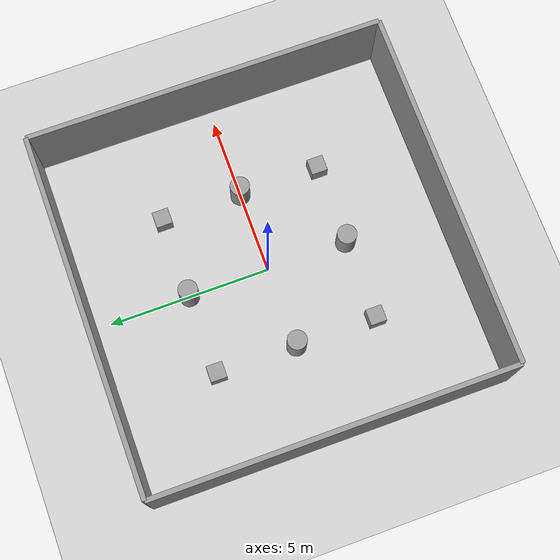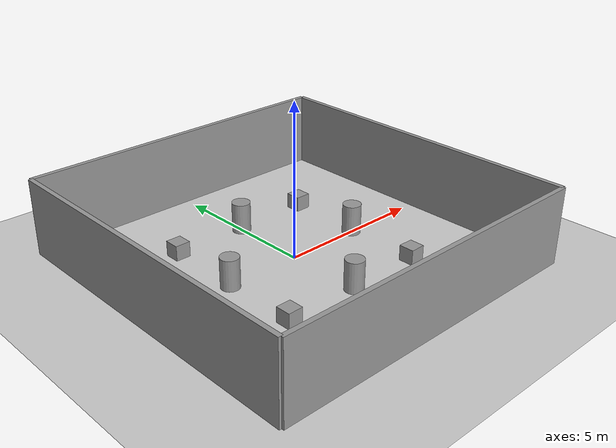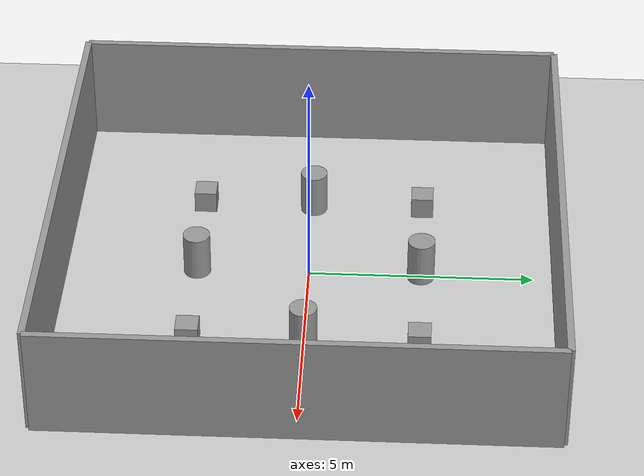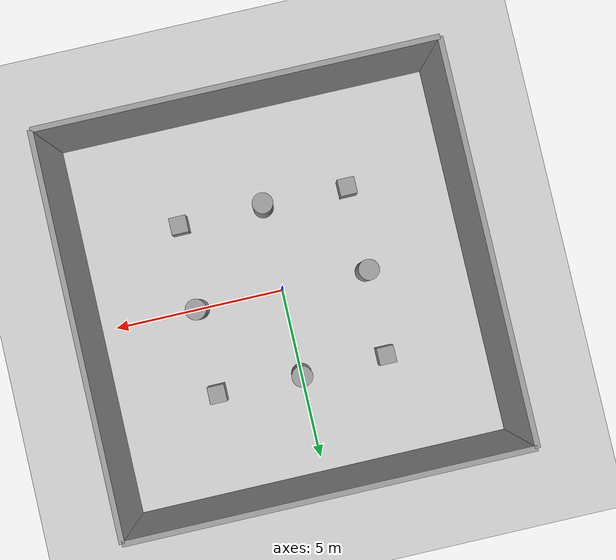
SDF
<sdf version="1.7">
 <world name="default">
  <light name="sun" type="directional">
   <pose>0 0 10 0 -0 0</pose>
   <diffuse>0.8 0.8 0.8 1</diffuse>
   <specular>0.2 0.2 0.2 1</specular>
   <attenuation>
    <range>1000</range>
    <constant>0.9</constant>
    <linear>0.01</linear>
    <quadratic>0.001</quadratic>
   </attenuation>
   <direction>-0.5 0.1 -0.9</direction>
   <spot><inner_angle>0</inner_angle><outer_angle>0</outer_angle><falloff>0</falloff></spot>
  </light>
  <model name="ground_plane">
   <static>1</static>
   <link name="link">
    <collision name="collision">
     <geometry><plane><normal>0 0 1</normal><size>100 100</size></plane></geometry>
     <surface>
      <contact><collide_bitmask>65535</collide_bitmask></contact>
      <friction><ode><mu>100</mu><mu2>50</mu2></ode></friction>
     </surface>
    </collision>
    <visual name="visual">
     <cast_shadows>0</cast_shadows>
     <geometry><plane><normal>0 0 1</normal><size>100 100</size></plane></geometry>
     <material>
      <script><uri>file://media/materials/scripts/gazebo.material</uri><name>Gazebo/Grey</name></script>
     </material>
    </visual>
   </link>
  </model>
  <gravity>0 0 -9.8</gravity>
  <magnetic_field>6e-06 2.3e-05 -4.2e-05</magnetic_field>
  <atmosphere type="adiabatic"/>
  <physics type="ode">
   <max_step_size>0.001</max_step_size>
   <real_time_factor>1</real_time_factor>
   <real_time_update_rate>1000</real_time_update_rate>
  </physics>
  <scene><ambient>0.4 0.4 0.4 1</ambient><background>0.7 0.7 0.7 1</background><shadows>1</shadows></scene>
  <audio><device>default</device></audio>
  <spherical_coordinates>
   <surface_model>EARTH_WGS84</surface_model>
   <latitude_deg>0</latitude_deg>
   <longitude_deg>0</longitude_deg>
   <elevation>0</elevation>
   <heading_deg>0</heading_deg>
  </spherical_coordinates>
  <model name="walls">
   <link name="Wall_10">
    <collision name="Wall_10_Collision">
     <geometry><box><size>11 0.15 2.5</size></box></geometry>
     <pose>0 0 1.25 0 -0 0</pose>
    </collision>
    <visual name="Wall_10_Visual">
     <pose>0 0 1.25 0 -0 0</pose>
     <geometry><box><size>11 0.15 2.5</size></box></geometry>
     <material>
      <script><uri>file://media/materials/scripts/gazebo.material</uri><name>Gazebo/Grey</name></script>
      <ambient>1 1 1 1</ambient>
     </material>
     <meta><layer>0</layer></meta>
    </visual>
    <pose>5.5 0 0 0 -0 1.5708</pose>
   </link>
   <link name="Wall_11">
    <collision name="Wall_11_Collision">
     <geometry><box><size>11 0.15 2.5</size></box></geometry>
     <pose>0 0 1.25 0 -0 0</pose>
    </collision>
    <visual name="Wall_11_Visual">
     <pose>0 0 1.25 0 -0 0</pose>
     <geometry><box><size>11 0.15 2.5</size></box></geometry>
     <material>
      <script><uri>file://media/materials/scripts/gazebo.material</uri><name>Gazebo/Grey</name></script>
      <ambient>1 1 1 1</ambient>
     </material>
     <meta><layer>0</layer></meta>
    </visual>
    <pose>0 5.5 0 0 -0 3.14159</pose>
   </link>
   <link name="Wall_7">
    <collision name="Wall_7_Collision">
     <geometry><box><size>11 0.15 2.5</size></box></geometry>
     <pose>0 0 1.25 0 -0 0</pose>
    </collision>
    <visual name="Wall_7_Visual">
     <pose>0 0 1.25 0 -0 0</pose>
     <geometry><box><size>11 0.15 2.5</size></box></geometry>
     <material>
      <script><uri>file://media/materials/scripts/gazebo.material</uri><name>Gazebo/Grey</name></script>
      <ambient>1 1 1 1</ambient>
     </material>
     <meta><layer>0</layer></meta>
    </visual>
    <pose>-5.5 0 0 0 0 -1.5708</pose>
   </link>
   <link name="Wall_8">
    <collision name="Wall_8_Collision">
     <geometry><box><size>11 0.15 2.5</size></box></geometry>
     <pose>0 0 1.25 0 -0 0</pose>
    </collision>
    <visual name="Wall_8_Visual">
     <pose>0 0 1.25 0 -0 0</pose>
     <geometry><box><size>11 0.15 2.5</size></box></geometry>
     <material>
      <script><uri>file://media/materials/scripts/gazebo.material</uri><name>Gazebo/Grey</name></script>
      <ambient>1 1 1 1</ambient>
     </material>
     <meta><layer>0</layer></meta>
    </visual>
    <pose>0 -5.5 0 0 -0 0</pose>
   </link>
   <static>1</static>
  </model>
  <model name="unit_box">
   <pose>-2.5 2.5 0.25 0 -0 0</pose>
   <link name="link">
    <inertial>
     <mass>1</mass>
     <inertia>
      <ixx>0.166667</ixx>
      <ixy>0</ixy>
      <ixz>0</ixz>
      <iyy>0.166667</iyy>
      <iyz>0</iyz>
      <izz>0.166667</izz>
     </inertia>
    </inertial>
    <collision name="collision"><geometry><box><size>0.5 0.5 0.5</size></box></geometry></collision>
    <visual name="visual">
     <geometry><box><size>0.5 0.5 0.5</size></box></geometry>
     <material>
      <script><name>Gazebo/Grey</name><uri>file://media/materials/scripts/gazebo.material</uri></script>
     </material>
    </visual>
   </link>
  </model>
  <model name="unit_box_0">
   <pose>2.5 2.5 0.25 0 -0 0</pose>
   <link name="link">
    <inertial>
     <mass>1</mass>
     <inertia>
      <ixx>0.166667</ixx>
      <ixy>0</ixy>
      <ixz>0</ixz>
      <iyy>0.166667</iyy>
      <iyz>0</iyz>
      <izz>0.166667</izz>
     </inertia>
    </inertial>
    <collision name="collision"><geometry><box><size>0.5 0.5 0.5</size></box></geometry></collision>
    <visual name="visual">
     <geometry><box><size>0.5 0.5 0.5</size></box></geometry>
     <material>
      <script><name>Gazebo/Grey</name><uri>file://media/materials/scripts/gazebo.material</uri></script>
     </material>
    </visual>
   </link>
  </model>
  <model name="unit_box_1">
   <pose>-2.5 -2.5 0.25 0 -0 0</pose>
   <link name="link">
    <inertial>
     <mass>1</mass>
     <inertia>
      <ixx>0.166667</ixx>
      <ixy>0</ixy>
      <ixz>0</ixz>
      <iyy>0.166667</iyy>
      <iyz>0</iyz>
      <izz>0.166667</izz>
     </inertia>
    </inertial>
    <collision name="collision"><geometry><box><size>0.5 0.5 0.5</size></box></geometry></collision>
    <visual name="visual">
     <geometry><box><size>0.5 0.5 0.5</size></box></geometry>
     <material>
      <script><name>Gazebo/Grey</name><uri>file://media/materials/scripts/gazebo.material</uri></script>
     </material>
    </visual>
   </link>
  </model>
  <model name="unit_box_2">
   <pose>2.5 -2.50001 0.25 0 -0 0</pose>
   <link name="link">
    <inertial>
     <mass>1</mass>
     <inertia>
      <ixx>0.166667</ixx>
      <ixy>0</ixy>
      <ixz>0</ixz>
      <iyy>0.166667</iyy>
      <iyz>0</iyz>
      <izz>0.166667</izz>
     </inertia>
    </inertial>
    <collision name="collision"><geometry><box><size>0.5 0.5 0.5</size></box></geometry></collision>
    <visual name="visual">
     <geometry><box><size>0.5 0.5 0.5</size></box></geometry>
     <material>
      <script><name>Gazebo/Grey</name><uri>file://media/materials/scripts/gazebo.material</uri></script>
     </material>
    </visual>
   </link>
  </model>
  <plugin name="gazebo_ros_state" filename="libgazebo_ros_state.so"/>
  <model name="unit_cylinder">
   <pose>0 2.5 0.5 0 -0 0</pose>
   <link name="link">
    <inertial>
     <mass>1</mass>
     <inertia><ixx>0.145833</ixx><ixy>0</ixy><ixz>0</ixz><iyy>0.145833</iyy><iyz>0</iyz><izz>0.125</izz></inertia>
    </inertial>
    <collision name="collision">
     <geometry><cylinder><radius>0.3</radius><length>1</length></cylinder></geometry>
    </collision>
    <visual name="visual">
     <geometry><cylinder><radius>0.3</radius><length>1</length></cylinder></geometry>
     <material>
      <script><name>Gazebo/Grey</name><uri>file://media/materials/scripts/gazebo.material</uri></script>
     </material>
    </visual>
   </link>
  </model>
  <model name="unit_cylinder_0">
   <pose>-2.5 0 0.5 0 0 0</pose>
   <link name="link">
    <inertial>
     <mass>1</mass>
     <inertia><ixx>0.145833</ixx><ixy>0</ixy><ixz>0</ixz><iyy>0.145833</iyy><iyz>0</iyz><izz>0.125</izz></inertia>
    </inertial>
    <collision name="collision">
     <geometry><cylinder><radius>0.3</radius><length>1</length></cylinder></geometry>
    </collision>
    <visual name="visual">
     <geometry><cylinder><radius>0.3</radius><length>1</length></cylinder></geometry>
     <material>
      <script><name>Gazebo/Grey</name><uri>file://media/materials/scripts/gazebo.material</uri></script>
     </material>
    </visual>
   </link>
  </model>
  <model name="unit_cylinder_1">
   <pose>0 -2.5 0.5 0 -0 0</pose>
   <link name="link">
    <inertial>
     <mass>1</mass>
     <inertia><ixx>0.145833</ixx><ixy>0</ixy><ixz>0</ixz><iyy>0.145833</iyy><iyz>0</iyz><izz>0.125</izz></inertia>
    </inertial>
    <collision name="collision">
     <geometry><cylinder><radius>0.3</radius><length>1</length></cylinder></geometry>
    </collision>
    <visual name="visual">
     <geometry><cylinder><radius>0.3</radius><length>1</length></cylinder></geometry>
     <material>
      <script><name>Gazebo/Grey</name><uri>file://media/materials/scripts/gazebo.material</uri></script>
     </material>
    </visual>
   </link>
  </model>
  <model name="unit_cylinder_2">
   <pose>2.5 0 0.5 0 0 0</pose>
   <link name="link">
    <inertial>
     <mass>1</mass>
     <inertia><ixx>0.145833</ixx><ixy>0</ixy><ixz>0</ixz><iyy>0.145833</iyy><iyz>0</iyz><izz>0.125</izz></inertia>
    </inertial>
    <collision name="collision">
     <geometry><cylinder><radius>0.3</radius><length>1</length></cylinder></geometry>
    </collision>
    <visual name="visual">
     <geometry><cylinder><radius>0.3</radius><length>1</length></cylinder></geometry>
     <material>
      <script><name>Gazebo/Grey</name><uri>file://media/materials/scripts/gazebo.material</uri></script>
     </material>
    </visual>
   </link>
  </model>
 </world>
</sdf>
